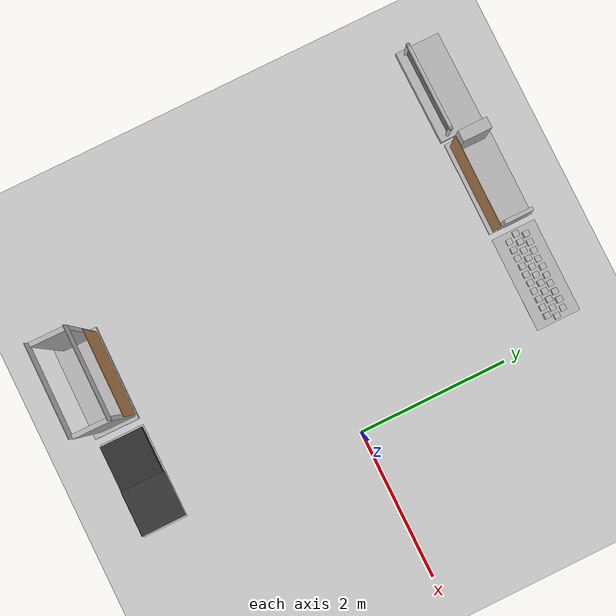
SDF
<sdf version="1.5">
 <world name="default">
  <model name="ground_plane">
   <static>1</static>
   <link name="link">
    <collision name="collision">
     <geometry><plane><normal>0 0 1</normal><size>100 100</size></plane></geometry>
     <surface><friction><ode><mu>100</mu><mu2>50</mu2></ode></friction></surface>
    </collision>
    <visual name="visual">
     <cast_shadows>0</cast_shadows>
     <geometry><plane><normal>0 0 1</normal><size>100 100</size></plane></geometry>
     <material>
      <script><uri>file://media/materials/scripts/gazebo.material</uri><name>Gazebo/Grey</name></script>
     </material>
    </visual>
   </link>
  </model>
  <model name="frc2016_roughterrain">
   <static>1</static>
   <pose>-0.796271 2.83126 -0.008615 0 -0 0</pose>
   <link name="link">
    <visual name="platform">
     <pose>0 0 0.08269 0 -0 0</pose>
     <geometry><box><size>1.27 0.5969 0.003175</size></box></geometry>
    </visual>
    <collision name="platform">
     <pose>0 0 0.08269 0 -0 0</pose>
     <geometry><box><size>1.27 0.5969 0.003175</size></box></geometry>
    </collision>
    <visual name="row1_block1_sm">
     <pose>0.51435 0.1143 0.09698 0 -0 0</pose>
     <geometry><box><size>0.0762 0.0762 0.0254</size></box></geometry>
    </visual>
    <collision name="row1_block1_sm">
     <pose>0.51435 0.1143 0.09698 0 -0 0</pose>
     <geometry><box><size>0.0762 0.0762 0.0254</size></box></geometry>
    </collision>
    <visual name="row1_block2_lg">
     <pose>0.40005 0.1143 0.12238 0 -0 0</pose>
     <geometry><box><size>0.0762 0.0762 0.0762</size></box></geometry>
    </visual>
    <collision name="row1_block2_lg">
     <pose>0.40005 0.1143 0.12238 0 -0 0</pose>
     <geometry><box><size>0.0762 0.0762 0.0762</size></box></geometry>
    </collision>
    <visual name="row1_block3_md">
     <pose>0.28575 0.1143 0.10968 0 -0 0</pose>
     <geometry><box><size>0.0762 0.0762 0.0508</size></box></geometry>
    </visual>
    <collision name="row1_block3_md">
     <pose>0.28575 0.1143 0.10968 0 -0 0</pose>
     <geometry><box><size>0.0762 0.0762 0.0508</size></box></geometry>
    </collision>
    <visual name="row1_block4_sm">
     <pose>0.17145 0.1143 0.09698 0 -0 0</pose>
     <geometry><box><size>0.0762 0.0762 0.0254</size></box></geometry>
    </visual>
    <collision name="row1_block4_sm">
     <pose>0.17145 0.1143 0.09698 0 -0 0</pose>
     <geometry><box><size>0.0762 0.0762 0.0254</size></box></geometry>
    </collision>
    <visual name="row1_block5_md">
     <pose>0.05715 0.1143 0.10968 0 -0 0</pose>
     <geometry><box><size>0.0762 0.0762 0.0508</size></box></geometry>
    </visual>
    <collision name="row1_block5_md">
     <pose>0.05715 0.1143 0.10968 0 -0 0</pose>
     <geometry><box><size>0.0762 0.0762 0.0508</size></box></geometry>
    </collision>
    <visual name="row1_block6_lg">
     <pose>-0.05715 0.1143 0.12238 0 -0 0</pose>
     <geometry><box><size>0.0762 0.0762 0.0762</size></box></geometry>
    </visual>
    <collision name="row1_block6_lg">
     <pose>-0.05715 0.1143 0.12238 0 -0 0</pose>
     <geometry><box><size>0.0762 0.0762 0.0762</size></box></geometry>
    </collision>
    <visual name="row1_block7_sm">
     <pose>-0.17145 0.1143 0.09698 0 -0 0</pose>
     <geometry><box><size>0.0762 0.0762 0.0254</size></box></geometry>
    </visual>
    <collision name="row1_block7_sm">
     <pose>-0.17145 0.1143 0.09698 0 -0 0</pose>
     <geometry><box><size>0.0762 0.0762 0.0254</size></box></geometry>
    </collision>
    <visual name="row1_block8_sm">
     <pose>-0.28575 0.1143 0.09698 0 -0 0</pose>
     <geometry><box><size>0.0762 0.0762 0.0254</size></box></geometry>
    </visual>
    <collision name="row1_block8_sm">
     <pose>-0.28575 0.1143 0.09698 0 -0 0</pose>
     <geometry><box><size>0.0762 0.0762 0.0254</size></box></geometry>
    </collision>
    <visual name="row1_block9_md">
     <pose>-0.40005 0.1143 0.10968 0 -0 0</pose>
     <geometry><box><size>0.0762 0.0762 0.0508</size></box></geometry>
    </visual>
    <collision name="row1_block9_md">
     <pose>-0.40005 0.1143 0.10968 0 -0 0</pose>
     <geometry><box><size>0.0762 0.0762 0.0508</size></box></geometry>
    </collision>
    <visual name="row1_block10_lg">
     <pose>-0.51435 0.1143 0.12238 0 -0 0</pose>
     <geometry><box><size>0.0762 0.0762 0.0762</size></box></geometry>
    </visual>
    <collision name="row1_block10_lg">
     <pose>-0.51435 0.1143 0.12238 0 -0 0</pose>
     <geometry><box><size>0.0762 0.0762 0.0762</size></box></geometry>
    </collision>
    <visual name="row2_block1_md">
     <pose>0.5715 0 0.10968 0 -0 0</pose>
     <geometry><box><size>0.0762 0.0762 0.0508</size></box></geometry>
    </visual>
    <collision name="row2_block1_md">
     <pose>0.5715 0 0.10968 0 -0 0</pose>
     <geometry><box><size>0.0762 0.0762 0.0508</size></box></geometry>
    </collision>
    <visual name="row2_block2_sm">
     <pose>0.4572 0 0.09698 0 -0 0</pose>
     <geometry><box><size>0.0762 0.0762 0.0254</size></box></geometry>
    </visual>
    <collision name="row2_block2_sm">
     <pose>0.4572 0 0.09698 0 -0 0</pose>
     <geometry><box><size>0.0762 0.0762 0.0254</size></box></geometry>
    </collision>
    <visual name="row2_block3_lg">
     <pose>0.3429 0 0.12238 0 -0 0</pose>
     <geometry><box><size>0.0762 0.0762 0.0762</size></box></geometry>
    </visual>
    <collision name="row2_block3_lg">
     <pose>0.3429 0 0.12238 0 -0 0</pose>
     <geometry><box><size>0.0762 0.0762 0.0762</size></box></geometry>
    </collision>
    <visual name="row2_block4_md">
     <pose>0.2286 0 0.10968 0 -0 0</pose>
     <geometry><box><size>0.0762 0.0762 0.0508</size></box></geometry>
    </visual>
    <collision name="row2_block4_md">
     <pose>0.2286 0 0.10968 0 -0 0</pose>
     <geometry><box><size>0.0762 0.0762 0.0508</size></box></geometry>
    </collision>
    <visual name="row2_block5_lg">
     <pose>0.1143 0 0.12238 0 -0 0</pose>
     <geometry><box><size>0.0762 0.0762 0.0762</size></box></geometry>
    </visual>
    <collision name="row2_block5_lg">
     <pose>0.1143 0 0.12238 0 -0 0</pose>
     <geometry><box><size>0.0762 0.0762 0.0762</size></box></geometry>
    </collision>
    <visual name="row2_block6_sm">
     <pose>0 0 0.09698 0 -0 0</pose>
     <geometry><box><size>0.0762 0.0762 0.0254</size></box></geometry>
    </visual>
    <collision name="row2_block6_sm">
     <pose>0 0 0.09698 0 -0 0</pose>
     <geometry><box><size>0.0762 0.0762 0.0254</size></box></geometry>
    </collision>
    <visual name="row2_block7_md">
     <pose>-0.1143 0 0.10968 0 -0 0</pose>
     <geometry><box><size>0.0762 0.0762 0.0508</size></box></geometry>
    </visual>
    <collision name="row2_block7_md">
     <pose>-0.1143 0 0.10968 0 -0 0</pose>
     <geometry><box><size>0.0762 0.0762 0.0508</size></box></geometry>
    </collision>
    <visual name="row2_block8_lg">
     <pose>-0.2286 0 0.12238 0 -0 0</pose>
     <geometry><box><size>0.0762 0.0762 0.0762</size></box></geometry>
    </visual>
    <collision name="row2_block8_lg">
     <pose>-0.2286 0 0.12238 0 -0 0</pose>
     <geometry><box><size>0.0762 0.0762 0.0762</size></box></geometry>
    </collision>
    <visual name="row2_block9_sm">
     <pose>-0.3429 0 0.09698 0 -0 0</pose>
     <geometry><box><size>0.0762 0.0762 0.0254</size></box></geometry>
    </visual>
    <collision name="row2_block9_sm">
     <pose>-0.3429 0 0.09698 0 -0 0</pose>
     <geometry><box><size>0.0762 0.0762 0.0254</size></box></geometry>
    </collision>
    <visual name="row2_block10_lg">
     <pose>-0.4572 0 0.12238 0 -0 0</pose>
     <geometry><box><size>0.0762 0.0762 0.0762</size></box></geometry>
    </visual>
    <collision name="row2_block10_lg">
     <pose>-0.4572 0 0.12238 0 -0 0</pose>
     <geometry><box><size>0.0762 0.0762 0.0762</size></box></geometry>
    </collision>
    <visual name="row2_block11_md">
     <pose>-0.5715 0 0.10968 0 -0 0</pose>
     <geometry><box><size>0.0762 0.0762 0.0508</size></box></geometry>
    </visual>
    <collision name="row2_block11_md">
     <pose>-0.5715 0 0.10968 0 -0 0</pose>
     <geometry><box><size>0.0762 0.0762 0.0508</size></box></geometry>
    </collision>
    <visual name="row3_block1_lg">
     <pose>0.51435 -0.1143 0.12238 0 -0 0</pose>
     <geometry><box><size>0.0762 0.0762 0.0762</size></box></geometry>
    </visual>
    <collision name="row3_block1_lg">
     <pose>0.51435 -0.1143 0.12238 0 -0 0</pose>
     <geometry><box><size>0.0762 0.0762 0.0762</size></box></geometry>
    </collision>
    <visual name="row3_block2_md">
     <pose>0.40005 -0.1143 0.10968 0 -0 0</pose>
     <geometry><box><size>0.0762 0.0762 0.0508</size></box></geometry>
    </visual>
    <collision name="row3_block2_md">
     <pose>0.40005 -0.1143 0.10968 0 -0 0</pose>
     <geometry><box><size>0.0762 0.0762 0.0508</size></box></geometry>
    </collision>
    <visual name="row3_block3_lg">
     <pose>0.28575 -0.1143 0.12238 0 -0 0</pose>
     <geometry><box><size>0.0762 0.0762 0.0762</size></box></geometry>
    </visual>
    <collision name="row3_block3_lg">
     <pose>0.28575 -0.1143 0.12238 0 -0 0</pose>
     <geometry><box><size>0.0762 0.0762 0.0762</size></box></geometry>
    </collision>
    <visual name="row3_block4_sm">
     <pose>0.17145 -0.1143 0.09698 0 -0 0</pose>
     <geometry><box><size>0.0762 0.0762 0.0254</size></box></geometry>
    </visual>
    <collision name="row3_block4_sm">
     <pose>0.17145 -0.1143 0.09698 0 -0 0</pose>
     <geometry><box><size>0.0762 0.0762 0.0254</size></box></geometry>
    </collision>
    <visual name="row3_block5_md">
     <pose>0.05715 -0.1143 0.10968 0 -0 0</pose>
     <geometry><box><size>0.0762 0.0762 0.0508</size></box></geometry>
    </visual>
    <collision name="row3_block5_md">
     <pose>0.05715 -0.1143 0.10968 0 -0 0</pose>
     <geometry><box><size>0.0762 0.0762 0.0508</size></box></geometry>
    </collision>
    <visual name="row3_block6_md">
     <pose>-0.05715 -0.1143 0.10968 0 -0 0</pose>
     <geometry><box><size>0.0762 0.0762 0.0508</size></box></geometry>
    </visual>
    <collision name="row3_block6_md">
     <pose>-0.05715 -0.1143 0.10968 0 -0 0</pose>
     <geometry><box><size>0.0762 0.0762 0.0508</size></box></geometry>
    </collision>
    <visual name="row3_block7_lg">
     <pose>-0.17145 -0.1143 0.12238 0 -0 0</pose>
     <geometry><box><size>0.0762 0.0762 0.0762</size></box></geometry>
    </visual>
    <collision name="row3_block7_lg">
     <pose>-0.17145 -0.1143 0.12238 0 -0 0</pose>
     <geometry><box><size>0.0762 0.0762 0.0762</size></box></geometry>
    </collision>
    <visual name="row3_block8_sm">
     <pose>-0.28575 -0.1143 0.09698 0 -0 0</pose>
     <geometry><box><size>0.0762 0.0762 0.0254</size></box></geometry>
    </visual>
    <collision name="row3_block8_sm">
     <pose>-0.28575 -0.1143 0.09698 0 -0 0</pose>
     <geometry><box><size>0.0762 0.0762 0.0254</size></box></geometry>
    </collision>
    <visual name="row3_block9_md">
     <pose>-0.40005 -0.1143 0.10968 0 -0 0</pose>
     <geometry><box><size>0.0762 0.0762 0.0508</size></box></geometry>
    </visual>
    <collision name="row3_block9_md">
     <pose>-0.40005 -0.1143 0.10968 0 -0 0</pose>
     <geometry><box><size>0.0762 0.0762 0.0508</size></box></geometry>
    </collision>
    <visual name="row3_block10_sm">
     <pose>-0.51435 -0.1143 0.09698 0 -0 0</pose>
     <geometry><box><size>0.0762 0.0762 0.0254</size></box></geometry>
    </visual>
    <collision name="row3_block10_sm">
     <pose>-0.51435 -0.1143 0.09698 0 -0 0</pose>
     <geometry><box><size>0.0762 0.0762 0.0254</size></box></geometry>
    </collision>
   </link>
   <pose>3 1 0 0 -0 0</pose>
  </model>
  <model name="frc2016_ramparts">
   <pose>-0.65617 -2.70099 0.015 0 -0 0</pose>
   <static>1</static>
   <link name="link">
    <visual name="platform"><geometry><box><size>1.27 0.5969 0.003175</size></box></geometry></visual>
    <collision name="platform">
     <pose>0 0 0.06967 0 -0 0</pose>
     <geometry><box><size>1.27 0.5969 0.003175</size></box></geometry>
    </collision>
    <visual name="ramp1">
     <pose>0.30472 0.00588 0.1109 -0.13 0 0</pose>
     <geometry><box><size>0.60957 0.588891 0.00462</size></box></geometry>
     <material><ambient>0.2 0.2 0.2 1</ambient><diffuse>0.2 0.2 0.2 1</diffuse></material>
    </visual>
    <collision name="ramp1">
     <pose>0.30472 0.00588 0.1109 -0.13 0 0</pose>
     <geometry><box><size>0.60957 0.588891 0.00462</size></box></geometry>
    </collision>
    <visual name="up1">
     <pose>0.30472 -0.28806 0.11072 0 -0 0</pose>
     <geometry><box><size>0.60957 0.00462 0.07872</size></box></geometry>
     <material><ambient>0.2 0.2 0.2 1</ambient><diffuse>0.2 0.2 0.2 1</diffuse></material>
    </visual>
    <collision name="up1">
     <pose>0.30472 -0.28806 0.11072 0 -0 0</pose>
     <geometry><box><size>0.60957 0.00462 0.07872</size></box></geometry>
    </collision>
    <visual name="ramp2">
     <pose>-0.30472 -0.00619 0.1109 0.13 -0 0</pose>
     <geometry><box><size>0.60957 0.588891 0.00462</size></box></geometry>
     <material><ambient>0.2 0.2 0.2 1</ambient><diffuse>0.2 0.2 0.2 1</diffuse></material>
    </visual>
    <collision name="ramp2">
     <pose>-0.30472 -0.00619 0.1109 0.13 -0 0</pose>
     <geometry><box><size>0.60957 0.588891 0.00462</size></box></geometry>
    </collision>
    <visual name="up2">
     <pose>-0.30472 0.28806 0.11072 0 -0 0</pose>
     <geometry><box><size>0.60957 0.00462 0.07872</size></box></geometry>
     <material><ambient>0.2 0.2 0.2 1</ambient><diffuse>0.2 0.2 0.2 1</diffuse></material>
    </visual>
    <collision name="up2">
     <pose>-0.30472 0.28806 0.11072 0 -0 0</pose>
     <geometry><box><size>0.60957 0.00462 0.07872</size></box></geometry>
    </collision>
   </link>
   <pose>-2.431 3 0 0 -0 0</pose>
  </model>
  <model name="frc2016_lowbar_0_0">
   <pose>-3.45668 2.8117 -5e-06 2.5e-05 -4e-06 0.009735</pose>
   <link name="base">
    <inertial>
     <mass>50</mass>
     <inertia>
      <ixx>0.035543</ixx>
      <ixy>0</ixy>
      <ixz>0</ixz>
      <iyy>0.134412</iyy>
      <iyz>0</iyz>
      <izz>0.165376</izz>
     </inertia>
    </inertial>
    <visual name="platform">
     <pose>0 0 0.039065 0 -0 0</pose>
     <geometry><box><size>1.27 0.60 0.089</size></box></geometry>
    </visual>
    <collision name="platform">
     <pose>0 0 0.039065 0 -0 0</pose>
     <geometry><box><size>1.27 0.60 0.089</size></box></geometry>
    </collision>
    <visual name="right_column">
     <pose>-0.57845 -0.18464 0.26863 0 -0 0</pose>
     <geometry><cylinder><radius>0.0254</radius><length>0.381</length></cylinder></geometry>
    </visual>
    <collision name="right_column">
     <pose>-0.57845 -0.18464 0.26863 0 -0 0</pose>
     <geometry><cylinder><radius>0.0254</radius><length>0.381</length></cylinder></geometry>
    </collision>
    <visual name="left_column">
     <pose>0.57845 -0.18464 0.26863 0 -0 0</pose>
     <geometry><cylinder><radius>0.0254</radius><length>0.381</length></cylinder></geometry>
    </visual>
    <collision name="left_column">
     <pose>0.57845 -0.18464 0.26863 0 -0 0</pose>
     <geometry><cylinder><radius>0.0254</radius><length>0.381</length></cylinder></geometry>
    </collision>
    <visual name="horizontal">
     <pose>0 -0.18464 0.43556 0 1.5707 0</pose>
     <geometry><cylinder><radius>0.0254</radius><length>1.2018</length></cylinder></geometry>
    </visual>
    <collision name="horizontal">
     <pose>0 -0.18464 0.43556 0 1.5707 0</pose>
     <geometry><cylinder><radius>0.0254</radius><length>1.2018</length></cylinder></geometry>
    </collision>
   </link>
   <link name="wall">
    <pose>0 -0.1778 0.24323 0 -0 0</pose>
    <inertial>
     <mass>1</mass>
     <inertia>
      <ixx>0.00774528</ixx>
      <ixy>0</ixy>
      <ixz>0</ixz>
      <iyy>0.116613</iyy>
      <iyz>0</iyz>
      <izz>0.108874</izz>
     </inertia>
    </inertial>
    <visual name="visual">
     <geometry><box><size>1.1176 0.00635 0.3</size></box></geometry>
     <material><ambient>0.46 0.46 0.46 1</ambient><diffuse>0.46 0.46 0.46 1</diffuse></material>
    </visual>
    <collision name="collision"><geometry><box><size>1.143 0.00635 0.3</size></box></geometry></collision>
   </link>
   <joint name="bar_joint" type="revolute">
    <pose>0 0 0.36378 0 -0 0</pose>
    <parent>base</parent>
    <child>wall</child>
    <axis>
     <xyz>1 0 0</xyz>
     <limit><lower>-1.5707</lower><upper>1.5707</upper></limit>
     <use_parent_model_frame>0</use_parent_model_frame>
     <dynamics>
      <damping>1</damping>
      <friction>1</friction>
      <spring_reference>0</spring_reference>
      <spring_stiffness>0</spring_stiffness>
     </dynamics>
    </axis>
   </joint>
   <pose>-3.451 3 0 0 -0 0</pose>
  </model>
  <model name="frc2016_sallyport">
   <pose>-2.13787 2.83352 0 0 0 0</pose>
   <link name="base">
    <inertial>
     <mass>50</mass>
     <pose>0 0 0.35406 0 -0 0</pose>
     <inertia><ixx>0.727808</ixx><ixy>0</ixy><ixz>0</ixz><iyy>1.77488</iyy><iyz>0</iyz><izz>1.64109</izz></inertia>
    </inertial>
    <visual name="platform">
     <pose>0 0 0.075 0 -0 0</pose>
     <geometry><box><size>1.27 0.5969 0.03</size></box></geometry>
    </visual>
    <collision name="platform">
     <pose>0 0 0.075 0 -0 0</pose>
     <geometry><box><size>1.27 0.5969 0.03</size></box></geometry>
    </collision>
    <visual name="left_column">
     <pose>-0.5588 0.00318 0.38876 0 -0 0</pose>
     <geometry><box><size>0.1524 0.38735 0.635</size></box></geometry>
    </visual>
    <collision name="left_column">
     <pose>-0.5588 0.00318 0.38876 0 -0 0</pose>
     <geometry><box><size>0.1524 0.38735 0.635</size></box></geometry>
    </collision>
    <visual name="right_column">
     <pose>0.6096 0.00635 0.38876 0 -0 0</pose>
     <geometry><box><size>0.0508 0.381 0.635</size></box></geometry>
    </visual>
    <collision name="right_column">
     <pose>0.6096 0.00635 0.38876 0 -0 0</pose>
     <geometry><box><size>0.0508 0.381 0.635</size></box></geometry>
    </collision>
    <visual name="castor1">
     <pose>-0.45886 0.15389 0.03487 0 -0 0</pose>
     <geometry><sphere><radius>0.03487</radius></sphere></geometry>
    </visual>
    <collision name="castor1">
     <pose>-0.45886 0.15389 0.03487 0 -0 0</pose>
     <geometry><sphere><radius>0.03487</radius></sphere></geometry>
    </collision>
    <visual name="castor2">
     <pose>-0.28117 -0.22559 0.03487 0 -0 0</pose>
     <geometry><sphere><radius>0.03487</radius></sphere></geometry>
    </visual>
    <collision name="castor2">
     <pose>-0.28117 -0.22559 0.03487 0 -0 0</pose>
     <geometry><sphere><radius>0.03487</radius></sphere></geometry>
    </collision>
    <visual name="castor3">
     <pose>0.27933 -0.2272 0.03487 0 -0 0</pose>
     <geometry><sphere><radius>0.03487</radius></sphere></geometry>
    </visual>
    <collision name="castor3">
     <pose>0.27933 -0.2272 0.03487 0 -0 0</pose>
     <geometry><sphere><radius>0.03487</radius></sphere></geometry>
    </collision>
    <visual name="castor4">
     <pose>0.4571 0.15424 0.03487 0 -0 0</pose>
     <geometry><sphere><radius>0.03487</radius></sphere></geometry>
    </visual>
    <collision name="castor4">
     <pose>0.4571 0.15424 0.03487 0 -0 0</pose>
     <geometry><sphere><radius>0.03487</radius></sphere></geometry>
    </collision>
   </link>
   <link name="door">
    <pose>0.02255 -0.24321 0.40332 0 -0 0</pose>
    <inertial>
     <pose>0 0 0 -1.5707 0 0</pose>
     <mass>2</mass>
     <inertia>
      <ixx>0.0619421</ixx>
      <ixy>0</ixy>
      <ixz>0</ixz>
      <iyy>0.246462</iyy>
      <iyz>0</iyz>
      <izz>0.30839</izz>
     </inertia>
    </inertial>
    <visual name="visual">
     <geometry><box><size>1.21603 0.00635 0.6096</size></box></geometry>
     <material><script><name>Gazebo/WoodFloor</name><uri>__default__</uri></script></material>
    </visual>
    <collision name="collision"><geometry><box><size>1.21603 0.00635 0.6096</size></box></geometry></collision>
   </link>
   <joint name="door_joint" type="revolute">
    <pose>-0.608015 0 0 0 -0 0</pose>
    <parent>base</parent>
    <child>door</child>
    <axis>
     <xyz>0 0 1</xyz>
     <limit><lower>-3.1415</lower><upper>0</upper></limit>
     <use_parent_model_frame>0</use_parent_model_frame>
     <dynamics><spring_reference>0</spring_reference><spring_stiffness>0.2</spring_stiffness></dynamics>
    </axis>
   </joint>
   <pose>-2 -2.54971 0 0 -0 0</pose>
  </model>
  <model name="frc2016_drawbridge">
   <pose>-2.00998 -2.70338 -2e-06 -1e-06 2e-06 -0.008794</pose>
   <link name="base">
    <inertial>
     <mass>10</mass>
     <pose>0 0 1 0 -0 0</pose>
     <inertia><ixx>3.64907</ixx><ixy>0</ixy><ixz>0</ixz><iyy>4.67075</iyy><iyz>0</iyz><izz>1.66649</izz></inertia>
    </inertial>
    <visual name="platform">
     <pose>0 0 0.0425 0 -0 0</pose>
     <geometry><box><size>1.27 0.5969 0.085</size></box></geometry>
    </visual>
    <collision name="platform">
     <pose>0 0 0.0425 0 -0 0</pose>
     <geometry><box><size>1.27 0.5969 0.085</size></box></geometry>
    </collision>
    <visual name="right_wall">
     <pose>0.55879 0.04444 0.889 0 -0 0</pose>
     <geometry><box><size>0.05715 0.45698 1.77165</size></box></geometry>
    </visual>
    <collision name="right_wall">
     <pose>0.55879 0.04444 0.889 0 -0 0</pose>
     <geometry><box><size>0.05715 0.45698 1.77165</size></box></geometry>
    </collision>
    <visual name="left_wall">
     <pose>-0.55879 0.04444 0.889 0 -0 0</pose>
     <geometry><box><size>0.05715 0.45698 1.77165</size></box></geometry>
    </visual>
    <collision name="left_wall">
     <pose>-0.55879 0.04444 0.889 0 -0 0</pose>
     <geometry><box><size>0.05715 0.45698 1.77165</size></box></geometry>
    </collision>
    <visual name="front_upper_wall">
     <pose>0 0.27611 1.84286 0 -0 0</pose>
     <geometry><box><size>1.1557 0.006347 0.254</size></box></geometry>
    </visual>
    <collision name="front_upper_wall">
     <pose>0 0.27611 1.84286 0 -0 0</pose>
     <geometry><box><size>1.1557 0.006347 0.254</size></box></geometry>
    </collision>
    <visual name="back_upper_wall">
     <pose>0 -0.18722 1.84286 0 -0 0</pose>
     <geometry><box><size>1.1557 0.006347 0.254</size></box></geometry>
    </visual>
    <collision name="back_upper_wall">
     <pose>0 -0.18722 1.84286 0 -0 0</pose>
     <geometry><box><size>1.1557 0.006347 0.254</size></box></geometry>
    </collision>
   </link>
   <link name="bridge">
    <pose>0 0.28245 0.50577 0 -0 0</pose>
    <inertial>
     <mass>2</mass>
     <pose>0 -0.28245 -0.50577 0 -0 0</pose>
     <inertia>
      <ixx>0.139361</ixx>
      <ixy>0</ixy>
      <ixz>0</ixz>
      <iyy>0.357088</iyy>
      <iyz>0</iyz>
      <izz>0.217741</izz>
     </inertia>
    </inertial>
    <visual name="visual">
     <geometry><box><size>1.14298 0.006347 0.9144</size></box></geometry>
     <material><script><name>Gazebo/WoodFloor</name><uri>__default__</uri></script></material>
    </visual>
    <collision name="collision"><geometry><box><size>1.14298 0.006347 0.9144</size></box></geometry></collision>
   </link>
   <joint name="bridge_joint" type="revolute">
    <pose>0 0 -0.4172 0 -0 0</pose>
    <parent>base</parent>
    <child>bridge</child>
    <axis>
     <xyz>1 0 0</xyz>
     <limit><lower>-2</lower><upper>0</upper></limit>
     <use_parent_model_frame>0</use_parent_model_frame>
     <dynamics><spring_reference>0</spring_reference><spring_stiffness>0</spring_stiffness></dynamics>
    </axis>
   </joint>
   <pose>-0.57844 -3 0 0 -0 0</pose>
  </model>
 </world>
</sdf>
